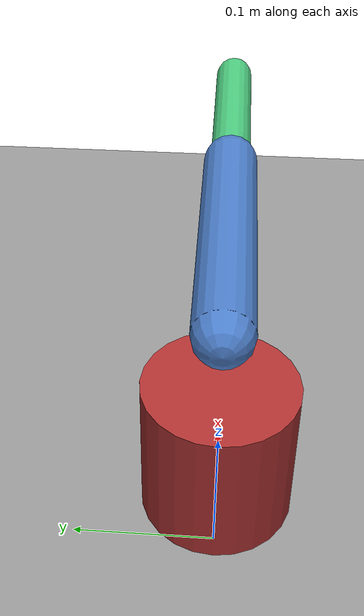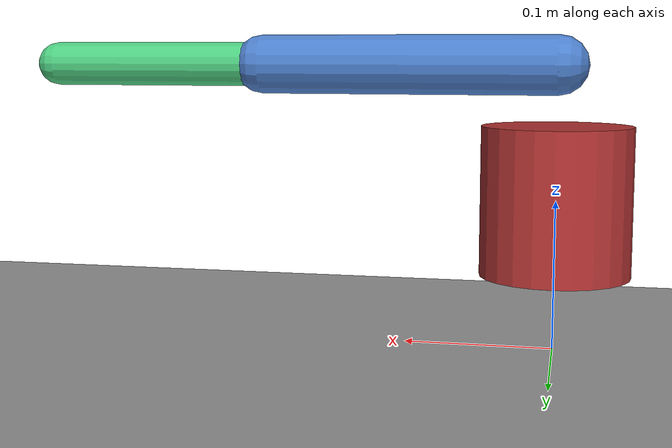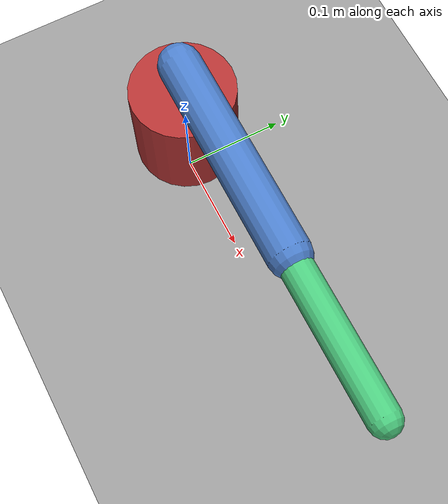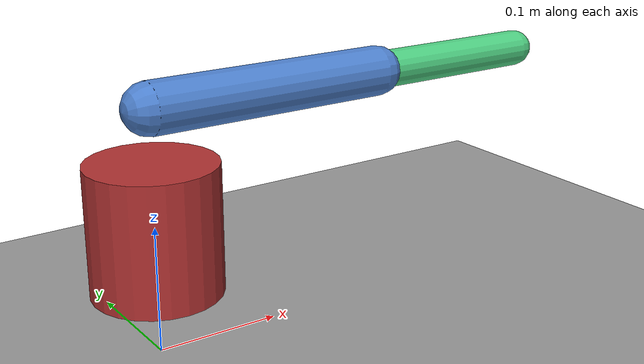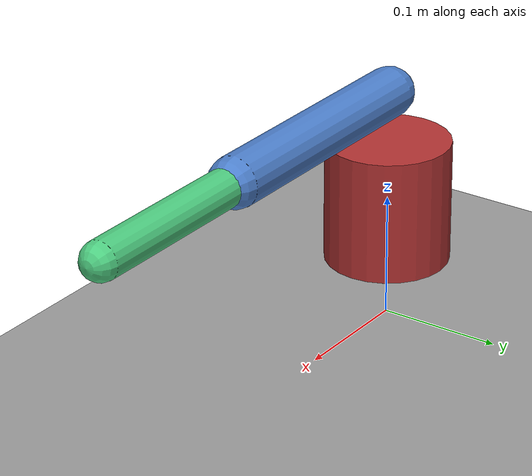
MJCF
<mujoco model="urlab_golden_scene">
    <compiler angle="radian"/>
    <option timestep="0.002" integrator="implicitfast" iterations="50"/>

    <worldbody>
        <!-- Directional: a positioned light with a `dir` is a spot, and it
             reaches nothing here, so camera frames come back black. -->
        <light directional="true" pos="0 0 3" dir="0 0 -1"/>
        <geom name="floor" type="plane" size="2 2 0.1" rgba="0.6 0.6 0.6 1"/>

        <body name="arm_base" pos="0 0 0.1">
            <geom name="base" type="cylinder" size="0.05 0.05" rgba="0.7 0.2 0.2 1"/>
            <body name="link1" pos="0 0 0.09">
                <joint name="shoulder" type="hinge" axis="0 1 0" range="-1.5 1.5"
                       armature="0.01" damping="0.5"/>
                <geom name="link1_geom" type="capsule" fromto="0 0 0 0.2 0 0" size="0.02" rgba="0.3 0.5 0.8 1"/>
                <camera name="head" pos="0.05 0 0.1" euler="0 -1.5708 0" fovy="60"/>
                <body name="link2" pos="0.2 0 0">
                    <joint name="elbow" type="hinge" axis="0 1 0" range="-1.5 1.5"
                           armature="0.01" damping="0.5"/>
                    <geom name="link2_geom" type="capsule" fromto="0 0 0 0.15 0 0" size="0.015" rgba="0.3 0.8 0.5 1"/>
                </body>
            </body>
        </body>
    </worldbody>

    <actuator>
        <position name="shoulder_act" joint="shoulder" kp="50" kv="5"/>
        <position name="elbow_act" joint="elbow" kp="50" kv="5"/>
    </actuator>

    <sensor>
        <jointpos name="shoulder_pos" joint="shoulder"/>
        <jointpos name="elbow_pos" joint="elbow"/>
    </sensor>
</mujoco>
